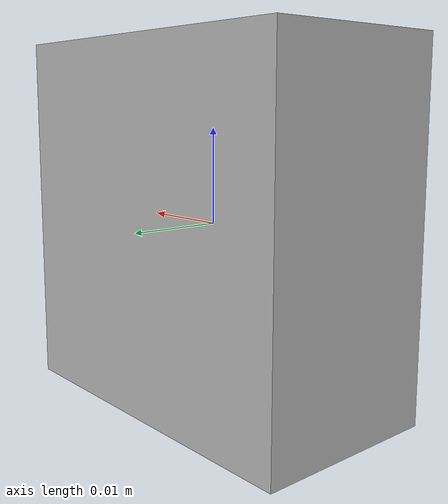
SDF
<?xml version="1.0" ?>
<sdf version="1.5">

  <model name="rpi_cam">

    <link name="link">

      <pose>0 0 0 -1.5707963259 1.5707963259 0</pose>

      <inertial>
        <mass>0.07</mass>
        <inertia>
          <ixx>4.166666666666667e-06</ixx>
          <iyy>5.208333333333334e-07</iyy>
          <izz>3.854166666666666e-06</izz>
        </inertia>
      </inertial>

      <visual name="visual">
        <geometry>
          <box>
            <size>0.038 0.038 0.02</size>
          </box>
        </geometry>
      </visual>

      <collision name="collision">
        <geometry>
          <box>
            <size>0.005 0.04 0.02</size>
          </box>
        </geometry>
      </collision>

      <sensor name="rpi_cam" type="camera">
        <always_on>true</always_on>
        <update_rate>10</update_rate>
        <visualize>true</visualize>
        <topic>/arucoMarker</topic>
        <camera>
          <horizontal_fov>1.308997</horizontal_fov> <!-- 75 deg -->
          <lens>
            <intrinsics>
              <fx>398.77559882561974</fx>
              <fy>396.51789974056226</fy>
              <cx>325.46639260681752</cx>
              <cy>239.06162259594086</cy>
              <s>0</s>
            </intrinsics>
            <scale_to_hfov>false</scale_to_hfov>
          </lens>
          <distortion>
            <k1>-0.074500551440667862</k1>
            <k2>-0.15464660896318899</k2>
            <k3>-0.00047134015104217627</k3>
            <p1>0.0036767321906851489</p1>
            <p2>0.28738933210835571</p2>
            <center>0.5 0.5</center>
          </distortion>
          <image>
            <width>640</width>
            <height>480</height>
            <format>L8</format>
          </image>
          <clip>
            <near>0.1</near>
            <far>100</far>
          </clip>
          <noise>
            <type>gaussian</type>
            <mean>0.0</mean>
            <stddev>0.001</stddev>
          </noise>
        </camera>

        <plugin name="rpi_marker_plugin" filename="libgazebo_rpi_plugin.so">
            <robotNamespace></robotNamespace>
            <landPadName>land_pad</landPadName>
        </plugin>

      </sensor>
    </link>
  </model>

</sdf>

<!-- vim: set et ft=xml fenc=utf-8 ff=unix sts=0 sw=2 ts=2 : -->
